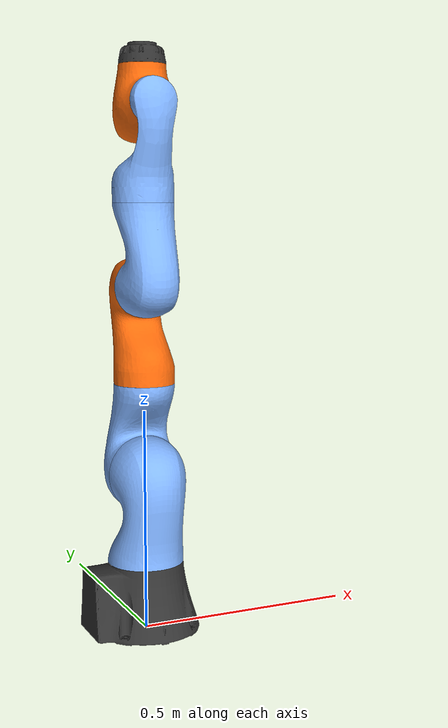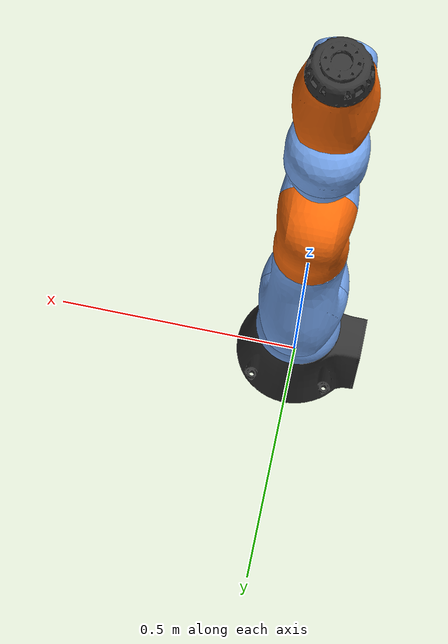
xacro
<?xml version="1.0" ?>
<!-- |    This document was autogenerated by xacro from other/kuka_iiwa/model.urdf     | -->
<!-- |    EDITING THIS FILE BY HAND IS NOT RECOMMENDED                                 | -->
<!-- | This document was autogenerated by xacro from lbr_iiwa.urdf.xacro   | -->
<!-- | Original xacro: https://github.com/rtkg/lbr_iiwa/archive/master.zip | -->
<!-- | EDITING THIS FILE BY HAND IS NOT RECOMMENDED                        | -->
<!-- | Changes (kohlhoff):                                                 | -->
<!-- |   * Removed gazebo tags.                                            | -->
<!-- |   * Removed unused materials.                                       | -->
<!-- |   * Made mesh paths relative.                                       | -->
<!-- |   * Removed material fields from collision segments.                | -->
<!-- |   * Removed the self_collision_checking segment.                    | -->
<!-- |   * Removed transmission segments, since they didn't match the      | -->
<!-- |     convention, will have to added back later.                      | -->
<!--LICENSE:                                                                 -->
<!--Copyright (c) 2015, Robert Krug & Todor Stoyanov, AASS Research Center,  -->
<!--Orebro University, Sweden                                                -->
<!--All rights reserved.                                                     -->
<!--Redistribution and use in source and binary forms, with or without       -->
<!--modification, are permitted provided that the following conditions are   -->
<!--met:                                                                     -->
<!--1. Redistributions of source code must retain the above copyright notice,-->
<!--   this list of conditions and the following disclaimer.                 -->
<!--2. Redistributions in binary form must reproduce the above copyright     -->
<!--   notice, this list of conditions and the following disclaimer in the   -->
<!--   documentation and/or other materials provided with the distribution.  -->
<!--THIS SOFTWARE IS PROVIDED BY THE COPYRIGHT HOLDERS AND CONTRIBUTORS "AS  -->
<!--IS" AND ANY EXPRESS OR IMPLIED WARRANTIES, INCLUDING, BUT NOT LIMITED TO,-->
<!--THE IMPLIED WARRANTIES OF MERCHANTABILITY AND FITNESS FOR A PARTICULAR   -->
<!--PURPOSE ARE DISCLAIMED. IN NO EVENT SHALL THE COPYRIGHT HOLDER OR        -->
<!--CONTRIBUTORS BE LIABLE FOR ANY DIRECT, INDIRECT, INCIDENTAL, SPECIAL,    -->
<!--EXEMPLARY, OR CONSEQUENTIAL DAMAGES (INCLUDING, BUT NOT LIMITED TO,      -->
<!--PROCUREMENT OF SUBSTITUTE GOODS OR SERVICES; LOSS OF USE, DATA, OR       -->
<!--PROFITS; OR BUSINESS INTERRUPTION) HOWEVER CAUSED AND ON ANY THEORY OF   -->
<!--LIABILITY, WHETHER IN CONTRACT, STRICT LIABILITY, OR TORT (INCLUDING     -->
<!--NEGLIGENCE OR OTHERWISE) ARISING IN ANY WAY OUT OF THE USE OF THIS       -->
<!--SOFTWARE, EVEN IF ADVISED OF THE POSSIBILITY OF SUCH DAMAGE.             -->
<robot name="lbr_iiwa">
  <!-- Import Rviz colors -->
  <material name="Grey">
    <color rgba="0.2 0.2 0.2 1.0"/>
  </material>
  <material name="Orange">
    <color rgba="1.0 0.423529411765 0.0392156862745 1.0"/>
  </material>
  <material name="Blue">
    <color rgba="0.5 0.7 1.0 1.0"/>
  </material>
  <!--Import the lbr iiwa macro -->
  <!--Import Transmissions -->
  <!--Include Utilities -->
  <!--The following macros are adapted from the LWR 4 definitions of the RCPRG - https://github.com/RCPRG-ros-pkg/lwr_robot -->
  <!--Little helper macros to define the inertia matrix needed for links.-->
  <!--Cuboid-->
  <!--Cylinder: length is along the y-axis! -->
  <!--lbr-->
  <link name="lbr_iiwa_link_0">
    <inertial>
      <origin rpy="0 0 0" xyz="-0.1 0 0.07"/>
      <!--Increase mass from 5 Kg original to provide a stable base to carry the
          arm.-->
      <mass value="0.0"/>
      <inertia ixx="0.05" ixy="0" ixz="0" iyy="0.06" iyz="0" izz="0.03"/>
    </inertial>
    <visual>
      <origin rpy="0 0 0" xyz="0 0 0"/>
      <geometry>
        <mesh filename="meshes/link_0.obj"/>
      </geometry>
      <material name="Grey"/>
    </visual>
    <collision>
      <origin rpy="0 0 0" xyz="0 0 0"/>
      <geometry>
        <mesh filename="meshes/link_0.stl"/>
      </geometry>
    </collision>
  </link>
  <!-- joint between link_0 and link_1 -->
  <joint name="lbr_iiwa_joint_1" type="revolute">
    <parent link="lbr_iiwa_link_0"/>
    <child link="lbr_iiwa_link_1"/>
    <origin rpy="0 0 0" xyz="0 0 0.1575"/>
    <axis xyz="0 0 1"/>
    <limit effort="300" lower="-2.96705972839" upper="2.96705972839" velocity="10"/>
    <dynamics damping="0.5"/>
  </joint>
  <link name="lbr_iiwa_link_1">
    <inertial>
      <origin rpy="0 0 0" xyz="0 -0.03 0.12"/>
      <mass value="4"/>
      <inertia ixx="0.1" ixy="0" ixz="0" iyy="0.09" iyz="0" izz="0.02"/>
    </inertial>
    <visual>
      <origin rpy="0 0 0" xyz="0 0 0"/>
      <geometry>
        <mesh filename="meshes/link_1.obj"/>
      </geometry>
      <material name="Blue"/>
    </visual>
    <collision>
      <origin rpy="0 0 0" xyz="0 0 0"/>
      <geometry>
        <mesh filename="meshes/link_1.stl"/>
      </geometry>
    </collision>
  </link>
  <!-- joint between link_1 and link_2 -->
  <joint name="lbr_iiwa_joint_2" type="revolute">
    <parent link="lbr_iiwa_link_1"/>
    <child link="lbr_iiwa_link_2"/>
    <origin rpy="1.57079632679   0 3.14159265359" xyz="0 0 0.2025"/>
    <axis xyz="0 0 1"/>
    <limit effort="300" lower="-2.09439510239" upper="2.09439510239" velocity="10"/>
    <dynamics damping="0.5"/>
  </joint>
  <link name="lbr_iiwa_link_2">
    <inertial>
      <origin rpy="0 0 0" xyz="0.0003 0.059 0.042"/>
      <mass value="4"/>
      <inertia ixx="0.05" ixy="0" ixz="0" iyy="0.018" iyz="0" izz="0.044"/>
    </inertial>
    <visual>
      <origin rpy="0 0 0" xyz="0 0 0"/>
      <geometry>
        <mesh filename="meshes/link_2.obj"/>
      </geometry>
      <material name="Blue"/>
    </visual>
    <collision>
      <origin rpy="0 0 0" xyz="0 0 0"/>
      <geometry>
        <mesh filename="meshes/link_2.stl"/>
      </geometry>
    </collision>
  </link>
  <!-- joint between link_2 and link_3 -->
  <joint name="lbr_iiwa_joint_3" type="revolute">
    <parent link="lbr_iiwa_link_2"/>
    <child link="lbr_iiwa_link_3"/>
    <origin rpy="1.57079632679 0 3.14159265359" xyz="0 0.2045 0"/>
    <axis xyz="0 0 1"/>
    <limit effort="300" lower="-2.96705972839" upper="2.96705972839" velocity="10"/>
    <dynamics damping="0.5"/>
  </joint>
  <link name="lbr_iiwa_link_3">
    <inertial>
      <origin rpy="0 0 0" xyz="0 0.03 0.13"/>
      <mass value="3"/>
      <inertia ixx="0.08" ixy="0" ixz="0" iyy="0.075" iyz="0" izz="0.01"/>
    </inertial>
    <visual>
      <origin rpy="0 0 0" xyz="0 0 0"/>
      <geometry>
        <mesh filename="meshes/link_3.obj"/>
      </geometry>
      <material name="Orange"/>
    </visual>
    <collision>
      <origin rpy="0 0 0" xyz="0 0 0"/>
      <geometry>
        <mesh filename="meshes/link_3.stl"/>
      </geometry>
    </collision>
  </link>
  <!-- joint between link_3 and link_4 -->
  <joint name="lbr_iiwa_joint_4" type="revolute">
    <parent link="lbr_iiwa_link_3"/>
    <child link="lbr_iiwa_link_4"/>
    <origin rpy="1.57079632679 0 0" xyz="0 0 0.2155"/>
    <axis xyz="0 0 1"/>
    <limit effort="300" lower="-2.09439510239" upper="2.09439510239" velocity="10"/>
    <dynamics damping="0.5"/>
  </joint>
  <link name="lbr_iiwa_link_4">
    <inertial>
      <origin rpy="0 0 0" xyz="0 0.067 0.034"/>
      <mass value="2.7"/>
      <inertia ixx="0.03" ixy="0" ixz="0" iyy="0.01" iyz="0" izz="0.029"/>
    </inertial>
    <visual>
      <origin rpy="0 0 0" xyz="0 0 0"/>
      <geometry>
        <mesh filename="meshes/link_4.obj"/>
      </geometry>
      <material name="Blue"/>
    </visual>
    <collision>
      <origin rpy="0 0 0" xyz="0 0 0"/>
      <geometry>
        <mesh filename="meshes/link_4.stl"/>
      </geometry>
    </collision>
  </link>
  <!-- joint between link_4 and link_5 -->
  <joint name="lbr_iiwa_joint_5" type="revolute">
    <parent link="lbr_iiwa_link_4"/>
    <child link="lbr_iiwa_link_5"/>
    <origin rpy="-1.57079632679 3.14159265359 0" xyz="0 0.1845 0"/>
    <axis xyz="0 0 1"/>
    <limit effort="300" lower="-2.96705972839" upper="2.96705972839" velocity="10"/>
    <dynamics damping="0.5"/>
  </joint>
  <link name="lbr_iiwa_link_5">
    <inertial>
      <origin rpy="0 0 0" xyz="0.0001 0.021 0.076"/>
      <mass value="1.7"/>
      <inertia ixx="0.02" ixy="0" ixz="0" iyy="0.018" iyz="0" izz="0.005"/>
    </inertial>
    <visual>
      <origin rpy="0 0 0" xyz="0 0 0"/>
      <geometry>
        <mesh filename="meshes/link_5.obj"/>
      </geometry>
      <material name="Blue"/>
    </visual>
    <collision>
      <origin rpy="0 0 0" xyz="0 0 0"/>
      <geometry>
        <mesh filename="meshes/link_5.stl"/>
      </geometry>
    </collision>
  </link>
  <!-- joint between link_5 and link_6 -->
  <joint name="lbr_iiwa_joint_6" type="revolute">
    <parent link="lbr_iiwa_link_5"/>
    <child link="lbr_iiwa_link_6"/>
    <origin rpy="1.57079632679 0 0" xyz="0 0 0.2155"/>
    <axis xyz="0 0 1"/>
    <limit effort="300" lower="-2.09439510239" upper="2.09439510239" velocity="10"/>
    <dynamics damping="0.5"/>
  </joint>
  <link name="lbr_iiwa_link_6">
    <inertial>
      <origin rpy="0 0 0" xyz="0 0.0006 0.0004"/>
      <mass value="1.8"/>
      <inertia ixx="0.005" ixy="0" ixz="0" iyy="0.0036" iyz="0" izz="0.0047"/>
    </inertial>
    <visual>
      <origin rpy="0 0 0" xyz="0 0 0"/>
      <geometry>
        <mesh filename="meshes/link_6.obj"/>
      </geometry>
      <material name="Orange"/>
    </visual>
    <collision>
      <origin rpy="0 0 0" xyz="0 0 0"/>
      <geometry>
        <mesh filename="meshes/link_6.stl"/>
      </geometry>
    </collision>
  </link>
  <!-- joint between link_6 and link_7 -->
  <joint name="lbr_iiwa_joint_7" type="revolute">
    <parent link="lbr_iiwa_link_6"/>
    <child link="lbr_iiwa_link_7"/>
    <origin rpy="-1.57079632679 3.14159265359 0" xyz="0 0.081 0"/>
    <axis xyz="0 0 1"/>
    <limit effort="300" lower="-3.05432619099" upper="3.05432619099" velocity="10"/>
    <dynamics damping="0.5"/>
  </joint>
  <link name="lbr_iiwa_link_7">
    <inertial>
      <origin rpy="0 0 0" xyz="0 0 0.02"/>
      <mass value="0.3"/>
      <inertia ixx="0.001" ixy="0" ixz="0" iyy="0.001" iyz="0" izz="0.001"/>
    </inertial>
    <visual>
      <origin rpy="0 0 0" xyz="0 0 0"/>
      <geometry>
        <mesh filename="meshes/link_7.obj"/>
      </geometry>
      <material name="Grey"/>
    </visual>
    <collision>
      <origin rpy="0 0 0" xyz="0 0 0"/>
      <geometry>
        <mesh filename="meshes/link_7.stl"/>
      </geometry>
    </collision>
  </link>
</robot>
